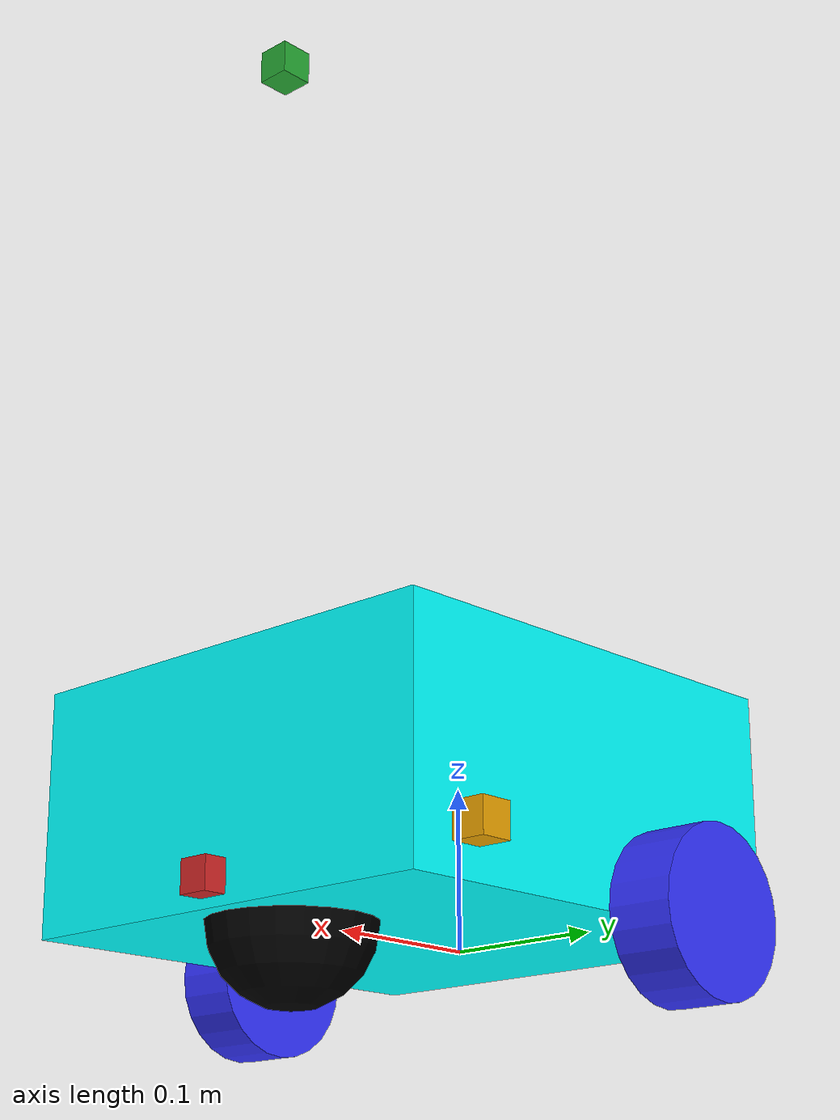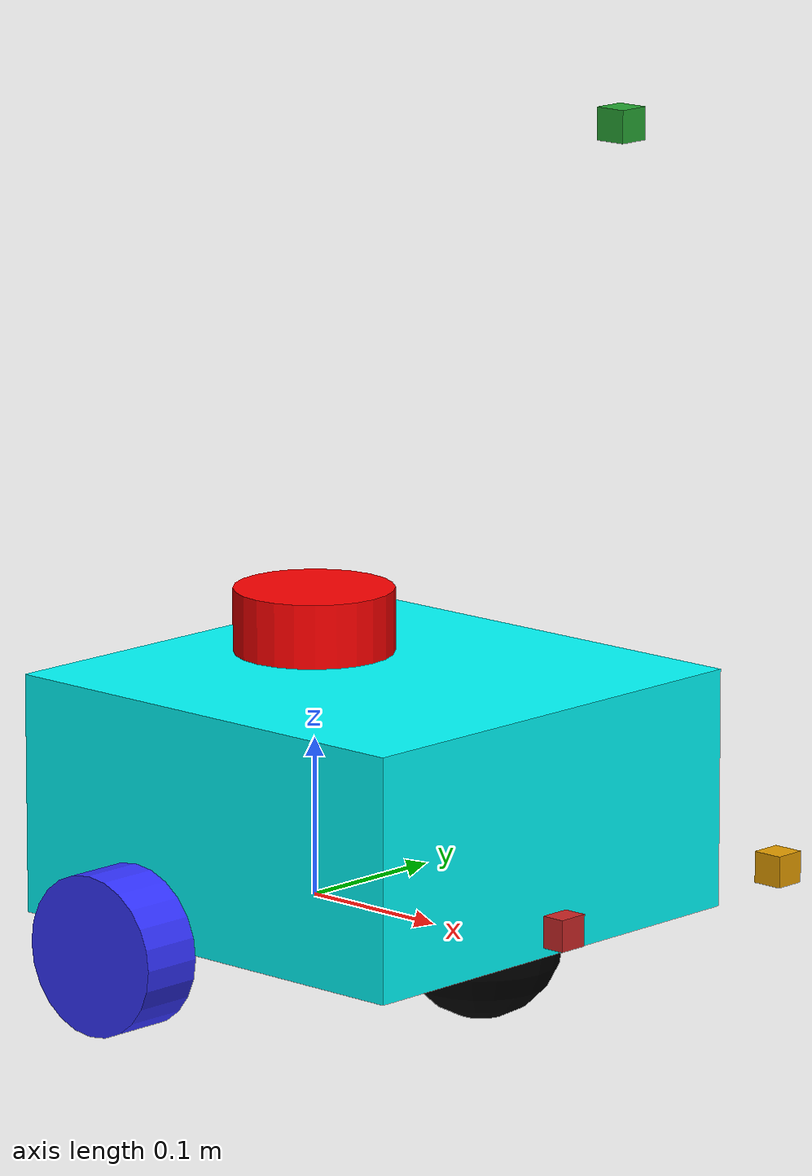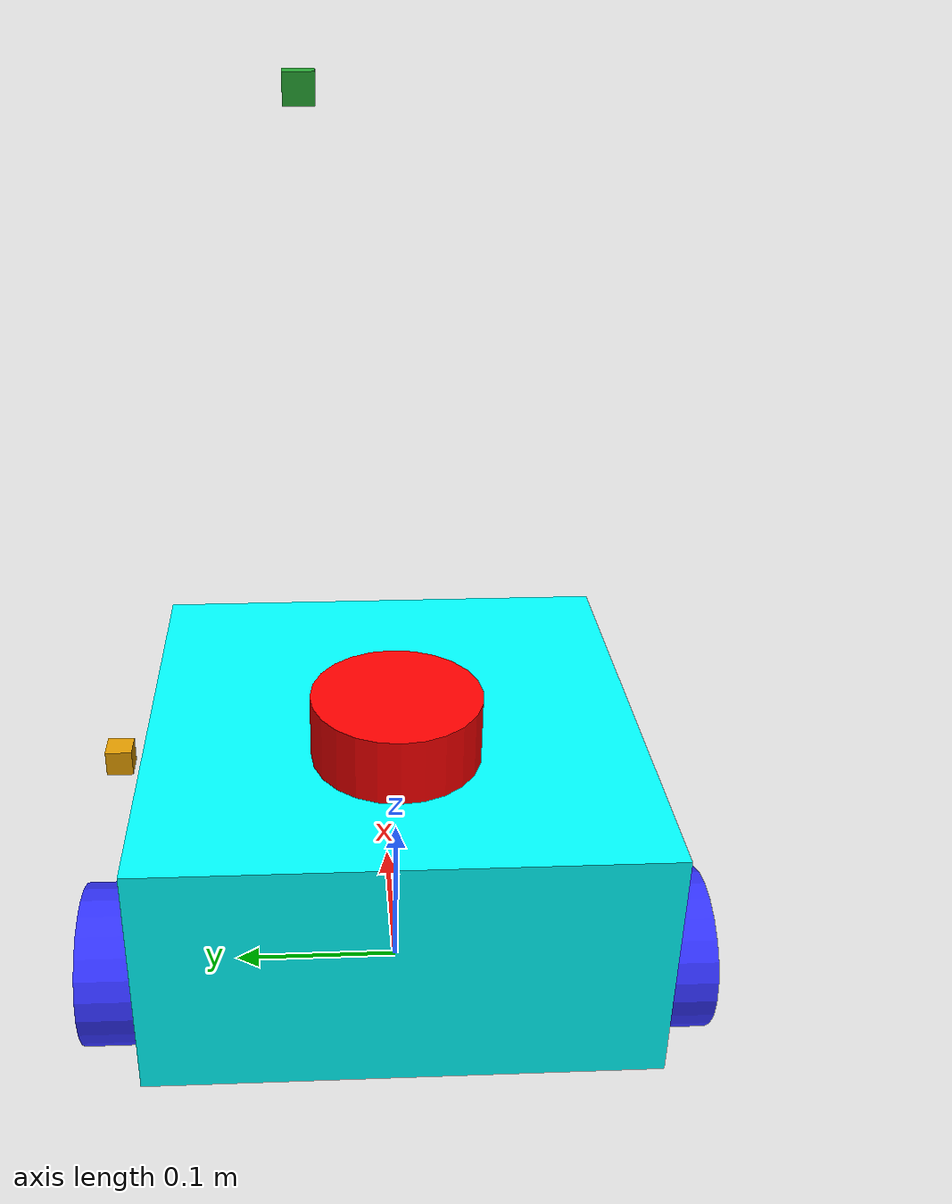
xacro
<?xml version="1.0"?>
<robot xmlns:xacro="http://www.ros.org/wiki/xacro"  name="robot">

    <xacro:include filename="robot_core.xacro" />

    <xacro:include filename="gazebo_control.xacro"/>

    <xacro:include filename="lidar.xacro"/>

    <xacro:include filename="imu.xacro"/>

    <xacro:include filename="ultrasonic.xacro"/>

    <xacro:include filename="ir_sensor.xacro"/>

</robot>

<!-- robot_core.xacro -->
<robot xmlns:xacro="http://www.ros.org/wiki/xacro" >

    <xacro:include filename="inertial_macros.xacro"/>

    <material name="white">
        <color rgba="1 1 1 1" />z
    </material>

    <material name="orange">
        <color rgba="1 0.3 0.1 1"/>
    </material>

    <material name="blue">
        <color rgba="0.2 0.2 1 1"/>
    </material>

    <material name="black">
        <color rgba="0 0 0 1"/>
    </material>

    <material name="red">
        <color rgba="1 0 0 1"/>
    </material>

    <material name="Cyan">
        <color rgba="0 1.0 1.0 1.0"/>
      </material>

    <!-- BASE LINK  -->

    <link name="base_link">

    </link>

    <!-- CHASSIS LINK  -->

    <joint name="chassis_joint" type="fixed" >

        <parent link="base_link"/>
        <child link="chassis"/>
        <origin xyz="-0.1 0 0"/>

    </joint>

    <link name="chassis">
        <visual>
            <origin xyz="0.15 0 0.075"/>
            <geometry>
                <box size="0.3 0.3 0.15"/>
            </geometry>
            <material name="Cyan"/>
        </visual>
        <collision>
            <origin xyz="0.15 0 0.075"/>
            <geometry>
                <box size="0.3 0.3 0.15"/>
            </geometry>
            <!-- In collision domain there is no Materials -->
        </collision>
        <xacro:inertial_box mass="50.0" x="0.3" y="0.3" z="0.15">
            <origin xyz = "0.15 0 0.75" rpy="0 0 0"/>
        </xacro:inertial_box>

    </link>

    <gazebo reference="chassis">
        <material>Gazebo/White</material>
    </gazebo>

    <!-- LEFT WHEEL LINK -->

    <joint name="left_wheel_joint" type="continuous">

        <parent link="base_link"/>
        <child link="left_wheel"/>
        <origin xyz="0 0.175 0" rpy="-${pi/2} 0 0"/>
        <axis xyz="0 0 1"/>

    </joint>

    <link name="left_wheel">
        <visual>
            <geometry>
                <cylinder radius="0.05" length="0.04"/>

            </geometry>
            <material name="blue"/>
        </visual>
        <collision>
            <geometry>
                <cylinder radius="0.05" length="0.04"/>

            </geometry>

        </collision>
        <xacro:inertial_cylinder mass="0.1" length="0.04" radius="0.05">
            <orange xyz="0 0 0" rpy="0 0 0"/>
        </xacro:inertial_cylinder>

    </link>
    <gazebo reference="left_wheel">
        <material>Gazebo/Blue</material>
    </gazebo>

    <!-- RIGHT WHEEL LINK -->

    <joint name="right_wheel_joint" type="continuous">

        <parent link="base_link"/>
        <child link="right_wheel"/>
        <origin xyz="0 -0.175 0" rpy="${pi/2} 0 0"/>
        <axis xyz="0 0 -1"/>

    </joint>

    <link name="right_wheel">
        <visual>
            <geometry>
                <cylinder radius="0.05" length="0.04"/>
            </geometry>
            <material name="blue"/>
        </visual>
        <collision>
            <geometry>
                <cylinder radius="0.05" length="0.04"/>
            </geometry>
        </collision>
        <xacro:inertial_cylinder mass="0.1" length="0.04" radius="0.05">
            <orange xyz="0 0 0" rpy="0 0 0"/>
        </xacro:inertial_cylinder>
    </link>

    <gazebo reference="right_wheel">
        <material>Gazebo/Blue</material>
    </gazebo>

    <!-- CASTER WHEEL LINK -->

    <joint name="caster_wheel_joint" type="fixed">
        <parent link="chassis"/>
        <child link="caster_wheel"/>
        <origin xyz="0.24 0 0"/>
    </joint>

    <link name="caster_wheel">

        <visual>
            <geometry>
                <sphere radius="0.05"/>
            </geometry>
            <material name="black"/>
        </visual>
        <collision>
            <geometry>
                <sphere radius="0.05"/>
            </geometry>
        </collision>
        <xacro:inertial_sphere mass="40.0" radius="0.05">
            <origin xyz="0 0 0" rpy="0 0 0"/>
        </xacro:inertial_sphere>

    </link>
    <gazebo reference="caster_wheel">
            <material>Gazebo/Black</material>
            <mu1 value="0.001"/>
            <mu2 value="0.001"/>
    </gazebo>

</robot>

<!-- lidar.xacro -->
<robot xmlns:xacro="http://www.ros.org/wiki/xacro">

    <joint name="laser_joint" type="fixed">
        <parent link="chassis"/>
        <child link="laser_frame"/>
        <origin xyz="0.1 0 0.175" rpy="0 0 0"/>
    </joint>
    <link name="laser_frame">
        <visual>
            <geometry>
                <cylinder radius="0.05" length="0.04"/>

            </geometry>
            <material name="red"/>
        </visual>
        <collision>
            <geometry>
                <cylinder radius="0.05" length="0.04"/>

            </geometry>

        </collision>
        <xacro:inertial_cylinder mass="0.5" length="0.04" radius="0.05">
            <orange xyz="0 0 0" rpy="0 0 0"/>
        </xacro:inertial_cylinder>
    </link>

    <gazebo reference="laser_frame">
        <material>Gazebo/Red</material>

        <sensor name="laser" type="ray">
            <pose>0 0 0 0 0 0</pose>
            <visualize>true</visualize>
            <updateRate>10</updateRate>
            <ray>
                <scan>
                    <horizontal>
                        <samples>360</samples>
                        <min_angle>-3.14</min_angle>
                        <max_angle>3.14</max_angle>
                    </horizontal>
                </scan>
                <range>
                    <min>0.3</min>
                    <max>12</max>
                </range>

            </ray>
            <plugin name="laser_controller" filename="libgazebo_ros_ray_sensor.so">
                <ros>
                    <argument>~/out:=scan</argument>

                </ros>
                <output_type>sensor_msgs/LaserScan</output_type>
                <frame_name>laser_frame</frame_name>
            </plugin>
        </sensor>

    </gazebo>

</robot>

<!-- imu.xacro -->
<robot xmlns:xacro="http://www.ros.org/wiki/xacro">

    <joint name="imu_sensor_joint" type="fixed">
        <origin xyz="0.305 0 0.016" rpy="0 0 0"/>
        <parent link="chassis"/>
        <child link="imu_sensor_link"/>
    </joint>

    <link name="imu_sensor_link">
        <collision>
            <origin xyz="0 0 0" rpy="0 0 0"/>
            <geometry>
                <box size="0.02 0.02 0.02"/>
            </geometry>
        </collision>
        <visual>
            <origin xyz="0 0 0" rpy="0 0 0"/>
            <geometry>
                <box size="0.02 0.02 0.02"/>
            </geometry>
            <material name="iRobot/Red"/>
        </visual>
        <inertial>
            <mass value="0.001" />
            <origin xyz="0 0 0" rpy="0 0 0"/>
            <inertia ixx="0.00000015" ixy="0" ixz="0" iyy="0.00000015" iyz="0" izz="0.00000015" />
        </inertial>
    </link>

    <gazebo reference="imu_sensor_link">
        <gravity>true</gravity>
        <sensor name='imu_sensor' type='imu'>
            <always_on>1</always_on>
            <update_rate>1000</update_rate>
            <visualize>1</visualize>
            <topic>imu_topic</topic>
            <plugin name='imu' filename='libgazebo_ros_imu_sensor.so'>
                <topicName>imu_data</topicName>
                <bodyName>imu_sensor_link</bodyName>
                <updateRateHZ>10.0</updateRateHZ>
                <gaussianNoise>0.0</gaussianNoise>
                <xyzOffset>0 0 0</xyzOffset>
                <rpyOffset>0 0 0</rpyOffset>
            </plugin>
            <pose>0 0 0 0 0 0</pose>
        </sensor>
    </gazebo>

</robot>

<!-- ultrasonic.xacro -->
<robot xmlns:xacro="http://www.ros.org/wiki/xacro">

    <joint name="ultrasonic_1_joint" type="fixed">
        <origin xyz="0.305 0.05 0.5 " rpy="0 0 0"/>
        <parent link="chassis"/>
        <child link="ultrasonic_1_link"/>
    </joint>

    <link name="ultrasonic_1_link">
        <collision>
            <origin xyz="0 0 0" rpy="0 0 0"/>
            <geometry>
                <box size="0.02 0.02 0.02"/>
            </geometry>
        </collision>
        <visual>
            <origin xyz="0 0 0" rpy="0 0 0"/>
            <geometry>
                <box size="0.02 0.02 0.02"/>
            </geometry>
            <material name="iRobot/Green"/>
        </visual>
        <inertial>
            <mass value="0.001" />
            <origin xyz="0 0 0" rpy="0 0 0"/>
            <inertia ixx="0.00000015" ixy="0" ixz="0" iyy="0.00000015" iyz="0" izz="0.00000015" />
        </inertial>
    </link>

    <gazebo reference="ultrasonic_1_link">
        <sensor type="ray" name="ultrasonics_1">
            <pose>0 0 0 0 0 0</pose>
            <visualize>true</visualize>
            <update_rate>5</update_rate>
            <ray>
                <scan>
                    <horizontal>
                    <samples>5</samples>
                    <resolution>1.000000</resolution>
                    <min_angle>-0.12</min_angle>
                    <max_angle>0.12</max_angle>
                    </horizontal>
                    <vertical>
                    <samples>10</samples>
                    <resolution>1.000000</resolution>
                    <min_angle>-0.1</min_angle>
                    <max_angle>0.1</max_angle>
                    </vertical>
                </scan>
                <range>
                    <min>0.02</min>
                    <max>4</max>
                    <resolution>0.001</resolution>
                </range>
                <noise>
                    <type>gaussian</type>
                    <mean>0.0</mean>
                    <stddev>0.01</stddev>
                </noise>
            </ray>
            <plugin name="ultrasonic_sensor_1" filename="libgazebo_ros_ray_sensor.so">
                <ros>
                    <remapping>~/out:=ultrasonic_sensor_1</remapping>
                </ros>
                <output_type>sensor_msgs/Range</output_type>
                <radiation_type>ultrasound</radiation_type>
                <frame_name>ultrasonic_1_link</frame_name>
            </plugin>
        </sensor>
   </gazebo>

</robot>

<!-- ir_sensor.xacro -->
<robot xmlns:xacro="http://www.ros.org/wiki/xacro">

    <joint name="ir_sensor_joint" type="fixed">
        <origin xyz="0.305 0.2 0.016" rpy="0 0 0"/>
        <parent link="chassis"/>
        <child link="ir_sensor_link"/>
    </joint>

    <link name="ir_sensor_link">
        <collision>
            <origin xyz="0 0 0" rpy="0 0 0"/>
            <geometry>
                <box size="0.02 0.02 0.02"/>
            </geometry>
        </collision>
        <visual>
            <origin xyz="0 0 0" rpy="0 0 0"/>
            <geometry>
                <box size="0.02 0.02 0.02"/>
            </geometry>
             <material>Gazebo/Green</material>
        </visual>
        <inertial>
            <mass value="0.001" />
            <origin xyz="0 0 0" rpy="0 0 0"/>
            <inertia ixx="0.00000015" ixy="0" ixz="0" iyy="0.00000015" iyz="0" izz="0.00000015" />
        </inertial>
    </link>

    <gazebo reference="ir_sensor_link">
        <sensor type="ray" name="TeraRanger">
            <pose>0 0 0 0 0 0</pose>
            <visualize>true</visualize>
            <update_rate>50</update_rate>
            <ray>
                <scan>
                    <horizontal>
                    <samples>10</samples>
                    <resolution>1</resolution>
                    <min_angle>-0.14835</min_angle>
                    <max_angle>0.14835</max_angle>
                    </horizontal>
                    <vertical>
                    <samples>10</samples>
                    <resolution>1</resolution>
                    <min_angle>-0.14835</min_angle>
                    <max_angle>0.14835</max_angle>
                    </vertical>
                </scan>
                <range>
                    <min>0.01</min>
                    <max>2</max>
                    <resolution>0.02</resolution>
                </range>
            </ray>
            <plugin filename="libgazebo_ros_range.so" name="gazebo_ros_range">
                <gaussianNoise>0.005</gaussianNoise>
                <alwaysOn>true</alwaysOn>
                <updateRate>50</updateRate>
                <topicName>sensor/ir_front</topicName>
                <frameName>base_ir_front</frameName>
                <radiation>INFRARED</radiation>
                <fov>0.2967</fov>
            </plugin>
        </sensor>
   </gazebo>

</robot>
